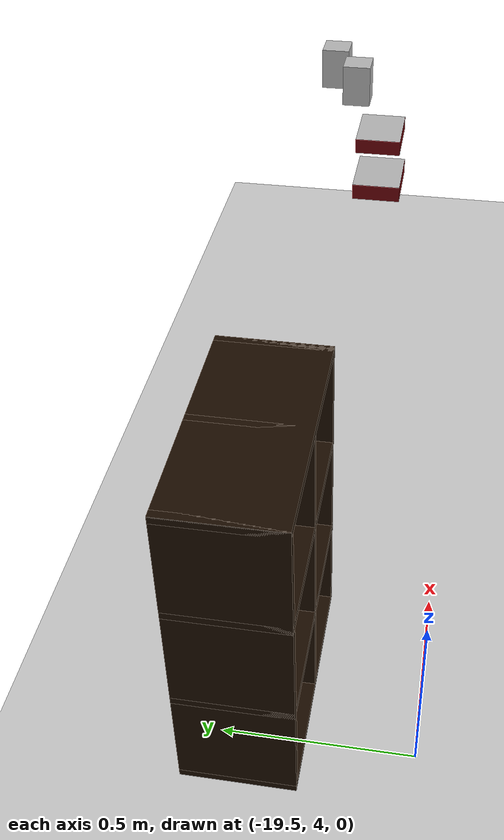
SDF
<sdf version="1.5">
 <world name="default">
  <model name="ground_plane">
   <static>1</static>
   <link name="link">
    <collision name="collision">
     <geometry><plane><normal>0 0 1</normal><size>100 100</size></plane></geometry>
     <surface>
      <contact><collide_bitmask>65535</collide_bitmask></contact>
      <friction><ode><mu>100</mu><mu2>50</mu2></ode></friction>
     </surface>
    </collision>
    <visual name="visual">
     <cast_shadows>0</cast_shadows>
     <geometry><plane><normal>0 0 1</normal><size>100 100</size></plane></geometry>
     <material>
      <script><uri>file://media/materials/scripts/gazebo.material</uri><name>Gazebo/Grey</name></script>
     </material>
    </visual>
   </link>
  </model>
  <model name="biscuit_box">
   <link name="link">
    <pose>0 0 0.025 0 -0 0</pose>
    <visual name="visual">
     <geometry><box><size>0.2 0.15 0.05</size></box></geometry>
     <material>
      <ambient>0.423 0.019 0.035 1</ambient>
      <diffuse>0.423 0.019 0.035 1</diffuse>
      <specular>0.01 0.01 0.01 1</specular>
      <emissive>0 0 0 1</emissive>
     </material>
    </visual>
    <collision name="collision"><geometry><box><size>0.1 0.1 0.15</size></box></geometry></collision>
   </link>
   <link name="link_1">
    <pose>0 0 0.05 0 -0 0</pose>
    <visual name="visual">
     <geometry><box><size>0.2 0.15 0.001</size></box></geometry>
     <material>
      <script>
       <uri>model://biscuit_box/materials/scripts</uri>
       <uri>model://biscuit_box/materials/textures</uri>
       <name>biscuit_pat</name>
      </script>
     </material>
    </visual>
    <collision name="collision"><geometry><box><size>0.1 0.1 0.15</size></box></geometry></collision>
   </link>
   <static>1</static>
   <pose>-17.9471 4.28627 0.773681 0 -0 0</pose>
  </model>
  <model name="biscuit_box_0">
   <link name="link">
    <pose>0 0 0.025 0 -0 0</pose>
    <visual name="visual">
     <geometry><box><size>0.2 0.15 0.05</size></box></geometry>
     <material>
      <ambient>0.423 0.019 0.035 1</ambient>
      <diffuse>0.423 0.019 0.035 1</diffuse>
      <specular>0.01 0.01 0.01 1</specular>
      <emissive>0 0 0 1</emissive>
     </material>
    </visual>
    <collision name="collision"><geometry><box><size>0.1 0.1 0.15</size></box></geometry></collision>
   </link>
   <link name="link_1">
    <pose>0 0 0.05 0 -0 0</pose>
    <visual name="visual">
     <geometry><box><size>0.2 0.15 0.001</size></box></geometry>
     <material>
      <script>
       <uri>model://biscuit_box/materials/scripts</uri>
       <uri>model://biscuit_box/materials/textures</uri>
       <name>biscuit_pat</name>
      </script>
     </material>
    </visual>
    <collision name="collision"><geometry><box><size>0.1 0.1 0.15</size></box></geometry></collision>
   </link>
   <static>1</static>
   <pose>-17.6804 4.30939 0.800334 0 -0 0</pose>
  </model>
  <model name="tea_box">
   <link name="link">
    <pose>0 0 0.075 0 -0 0</pose>
    <visual name="visual">
     <geometry><box><size>0.1 0.1 0.15</size></box></geometry>
     <material>
      <script>
       <uri>model://tea_box/materials/scripts</uri>
       <uri>model://tea_box/materials/textures</uri>
       <name>tea_pat</name>
      </script>
     </material>
    </visual>
    <collision name="collision"><geometry><box><size>0.1 0.1 0.15</size></box></geometry></collision>
   </link>
   <static>1</static>
   <pose>-17.3071 4.43485 0.777018 0 -0 0</pose>
  </model>
  <model name="tea_box_0">
   <link name="link">
    <pose>0 0 0.075 0 -0 0</pose>
    <visual name="visual">
     <geometry><box><size>0.1 0.1 0.15</size></box></geometry>
     <material>
      <script>
       <uri>model://tea_box/materials/scripts</uri>
       <uri>model://tea_box/materials/textures</uri>
       <name>tea_pat</name>
      </script>
     </material>
    </visual>
    <collision name="collision"><geometry><box><size>0.1 0.1 0.15</size></box></geometry></collision>
   </link>
   <static>1</static>
   <pose>-17.1641 4.53186 0.778016 0 -0 0</pose>
  </model>
  <model name="6_Cube_StorageE_1">
   <link name="Wall_0">
    <pose>0 0 0.01 0 -0 0</pose>
    <inertial>
     <mass>1.6201</mass>
     <inertia><ixx>0.0119</ixx><iyy>0.0631</iyy><izz>0.0513</izz><ixy>0</ixy><ixz>0</ixz><iyz>0</iyz></inertia>
    </inertial>
    <collision name="Wall_0_Collision"><geometry><box><size>0.616 0.296 0.02</size></box></geometry></collision>
    <visual name="Wall_0_Visual">
     <geometry><box><size>0.616 0.296 0.02</size></box></geometry>
     <material>
      <script><uri>file://media/materials/scripts/gazebo.material</uri><name>Gazebo/Grey</name></script>
      <ambient>0.105882 0.0509804 0 1</ambient>
     </material>
    </visual>
   </link>
   <joint name="0_2" type="fixed">
    <pose>-0.308 0 0 0 -0 0</pose>
    <parent>Wall_2</parent>
    <child>Wall_0</child>
    <axis>
     <xyz>1 0 0</xyz>
     <use_parent_model_frame>0</use_parent_model_frame>
     <limit><lower>-1e+16</lower><upper>1e+16</upper></limit>
    </axis>
   </joint>
   <joint name="0_12" type="fixed">
    <parent>Wall_12</parent>
    <child>Wall_0</child>
    <axis>
     <xyz>0 0 1</xyz>
     <use_parent_model_frame>0</use_parent_model_frame>
     <limit><lower>-1e+16</lower><upper>1e+16</upper></limit>
    </axis>
   </joint>
   <joint name="0_4" type="fixed">
    <pose>0.308 0 0 0 -0 0</pose>
    <parent>Wall_4</parent>
    <child>Wall_0</child>
    <axis>
     <xyz>1 0 0</xyz>
     <use_parent_model_frame>0</use_parent_model_frame>
     <limit><lower>-1e+16</lower><upper>1e+16</upper></limit>
    </axis>
   </joint>
   <link name="Wall_10">
    <pose>0 0 0.61 0 -0 0</pose>
    <inertial>
     <mass>1.6201</mass>
     <inertia><ixx>0.0119</ixx><iyy>0.0631</iyy><izz>0.0513</izz><ixy>0</ixy><ixz>0</ixz><iyz>0</iyz></inertia>
    </inertial>
    <collision name="Wall_10_Collision"><geometry><box><size>0.616 0.296 0.02</size></box></geometry></collision>
    <visual name="Wall_10_Visual">
     <geometry><box><size>0.616 0.296 0.02</size></box></geometry>
     <material>
      <script><uri>file://media/materials/scripts/gazebo.material</uri><name>Gazebo/Grey</name></script>
      <ambient>0.105882 0.0509804 0 1</ambient>
     </material>
    </visual>
   </link>
   <joint name="10_2" type="fixed">
    <pose>-0.308 0 0 0 -0 0</pose>
    <parent>Wall_2</parent>
    <child>Wall_10</child>
    <axis>
     <xyz>1 0 0</xyz>
     <use_parent_model_frame>0</use_parent_model_frame>
     <limit><lower>-1e+16</lower><upper>1e+16</upper></limit>
    </axis>
   </joint>
   <joint name="10_12" type="fixed">
    <parent>Wall_12</parent>
    <child>Wall_10</child>
    <axis>
     <xyz>0 0 1</xyz>
     <use_parent_model_frame>0</use_parent_model_frame>
     <limit><lower>-1e+16</lower><upper>1e+16</upper></limit>
    </axis>
   </joint>
   <joint name="10_4" type="fixed">
    <pose>0.308 0 0 0 -0 0</pose>
    <parent>Wall_4</parent>
    <child>Wall_10</child>
    <axis>
     <xyz>1 0 0</xyz>
     <use_parent_model_frame>0</use_parent_model_frame>
     <limit><lower>-1e+16</lower><upper>1e+16</upper></limit>
    </axis>
   </joint>
   <link name="Wall_12">
    <pose>0 0 0.4575 0 -0 0</pose>
    <inertial>
     <mass>2.4065</mass>
     <inertia><ixx>0.0177</ixx><iyy>0.1855</iyy><izz>0.168</izz><ixy>0</ixy><ixz>0</ixz><iyz>0</iyz></inertia>
    </inertial>
    <collision name="Wall_12_Collision"><geometry><box><size>0.02 0.296 0.915</size></box></geometry></collision>
    <visual name="Wall_12_Visual">
     <geometry><box><size>0.02 0.296 0.915</size></box></geometry>
     <material>
      <script><uri>file://media/materials/scripts/gazebo.material</uri><name>Gazebo/Grey</name></script>
      <ambient>0.105882 0.0509804 0 1</ambient>
     </material>
    </visual>
   </link>
   <link name="Wall_2">
    <pose>-0.298 0 0.4575 0 -0 0</pose>
    <inertial>
     <mass>2.4065</mass>
     <inertia><ixx>0.0177</ixx><iyy>0.1855</iyy><izz>0.168</izz><ixy>0</ixy><ixz>0</ixz><iyz>0</iyz></inertia>
    </inertial>
    <collision name="Wall_2_Collision"><geometry><box><size>0.02 0.296 0.915</size></box></geometry></collision>
    <visual name="Wall_2_Visual">
     <geometry><box><size>0.02 0.296 0.915</size></box></geometry>
     <material>
      <script><uri>file://media/materials/scripts/gazebo.material</uri><name>Gazebo/Grey</name></script>
      <ambient>0.105882 0.0509804 0 1</ambient>
     </material>
    </visual>
   </link>
   <link name="Wall_4">
    <pose>0.298 0 0.4575 0 -0 0</pose>
    <inertial>
     <mass>2.4065</mass>
     <inertia><ixx>0.0177</ixx><iyy>0.1855</iyy><izz>0.168</izz><ixy>0</ixy><ixz>0</ixz><iyz>0</iyz></inertia>
    </inertial>
    <collision name="Wall_4_Collision"><geometry><box><size>0.02 0.296 0.915</size></box></geometry></collision>
    <visual name="Wall_4_Visual">
     <geometry><box><size>0.02 0.296 0.915</size></box></geometry>
     <material>
      <script><uri>file://media/materials/scripts/gazebo.material</uri><name>Gazebo/Grey</name></script>
      <ambient>0.105882 0.0509804 0 1</ambient>
     </material>
    </visual>
   </link>
   <link name="Wall_6">
    <pose>0 0 0.905 0 -0 0</pose>
    <inertial>
     <mass>1.6201</mass>
     <inertia><ixx>0.0119</ixx><iyy>0.0631</iyy><izz>0.0513</izz><ixy>0</ixy><ixz>0</ixz><iyz>0</iyz></inertia>
    </inertial>
    <collision name="Wall_6_Collision"><geometry><box><size>0.616 0.296 0.02</size></box></geometry></collision>
    <visual name="Wall_6_Visual">
     <geometry><box><size>0.616 0.296 0.02</size></box></geometry>
     <material>
      <script><uri>file://media/materials/scripts/gazebo.material</uri><name>Gazebo/Grey</name></script>
      <ambient>0.105882 0.0509804 0 1</ambient>
     </material>
    </visual>
   </link>
   <joint name="6_2" type="fixed">
    <pose>-0.308 0 0 0 -0 0</pose>
    <parent>Wall_2</parent>
    <child>Wall_6</child>
    <axis>
     <xyz>2 0 0</xyz>
     <use_parent_model_frame>0</use_parent_model_frame>
     <limit><lower>-1e+16</lower><upper>1e+16</upper></limit>
    </axis>
   </joint>
   <joint name="6_12" type="fixed">
    <parent>Wall_12</parent>
    <child>Wall_6</child>
    <axis>
     <xyz>0 0 1</xyz>
     <use_parent_model_frame>0</use_parent_model_frame>
     <limit><lower>-1e+16</lower><upper>1e+16</upper></limit>
    </axis>
   </joint>
   <joint name="6_4" type="fixed">
    <pose>0.308 0 0 0 -0 0</pose>
    <parent>Wall_4</parent>
    <child>Wall_6</child>
    <axis>
     <xyz>1 0 0</xyz>
     <use_parent_model_frame>0</use_parent_model_frame>
     <limit><lower>-1e+16</lower><upper>1e+16</upper></limit>
    </axis>
   </joint>
   <link name="Wall_8">
    <pose>0 0 0.305 0 -0 0</pose>
    <inertial>
     <mass>1.6201</mass>
     <inertia><ixx>0.0119</ixx><iyy>0.0631</iyy><izz>0.0513</izz><ixy>0</ixy><ixz>0</ixz><iyz>0</iyz></inertia>
    </inertial>
    <collision name="Wall_8_Collision"><geometry><box><size>0.616 0.296 0.02</size></box></geometry></collision>
    <visual name="Wall_8_Visual">
     <geometry><box><size>0.616 0.296 0.02</size></box></geometry>
     <material>
      <script><uri>file://media/materials/scripts/gazebo.material</uri><name>Gazebo/Grey</name></script>
      <ambient>0.105882 0.0509804 0 1</ambient>
     </material>
    </visual>
   </link>
   <joint name="8_2" type="fixed">
    <pose>-0.308 0 0 0 -0 0</pose>
    <parent>Wall_2</parent>
    <child>Wall_8</child>
    <axis>
     <xyz>1 0 0</xyz>
     <use_parent_model_frame>0</use_parent_model_frame>
     <limit><lower>-1e+16</lower><upper>1e+16</upper></limit>
    </axis>
   </joint>
   <joint name="8_12" type="fixed">
    <parent>Wall_12</parent>
    <child>Wall_8</child>
    <axis>
     <xyz>0 0 1</xyz>
     <use_parent_model_frame>0</use_parent_model_frame>
     <limit><lower>-1e+16</lower><upper>1e+16</upper></limit>
    </axis>
   </joint>
   <joint name="8_4" type="fixed">
    <pose>0.308 0 0 0 -0 0</pose>
    <parent>Wall_4</parent>
    <child>Wall_8</child>
    <axis>
     <xyz>1 0 0</xyz>
     <use_parent_model_frame>0</use_parent_model_frame>
     <limit><lower>-1e+16</lower><upper>1e+16</upper></limit>
    </axis>
   </joint>
   <static>1</static>
   <pose>-19.3284 4.43099 0 0 -0 0</pose>
  </model>
 </world>
</sdf>
